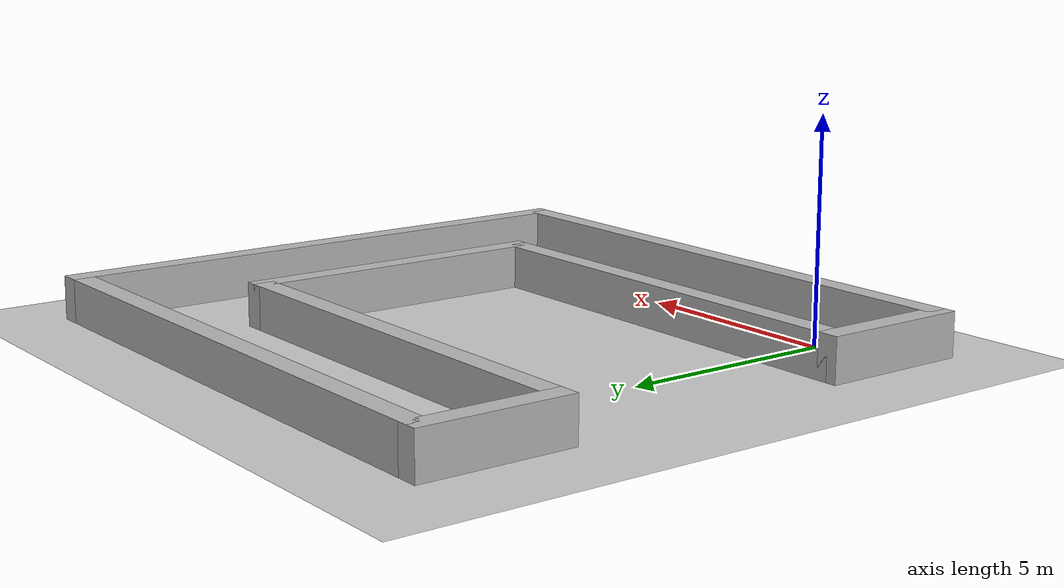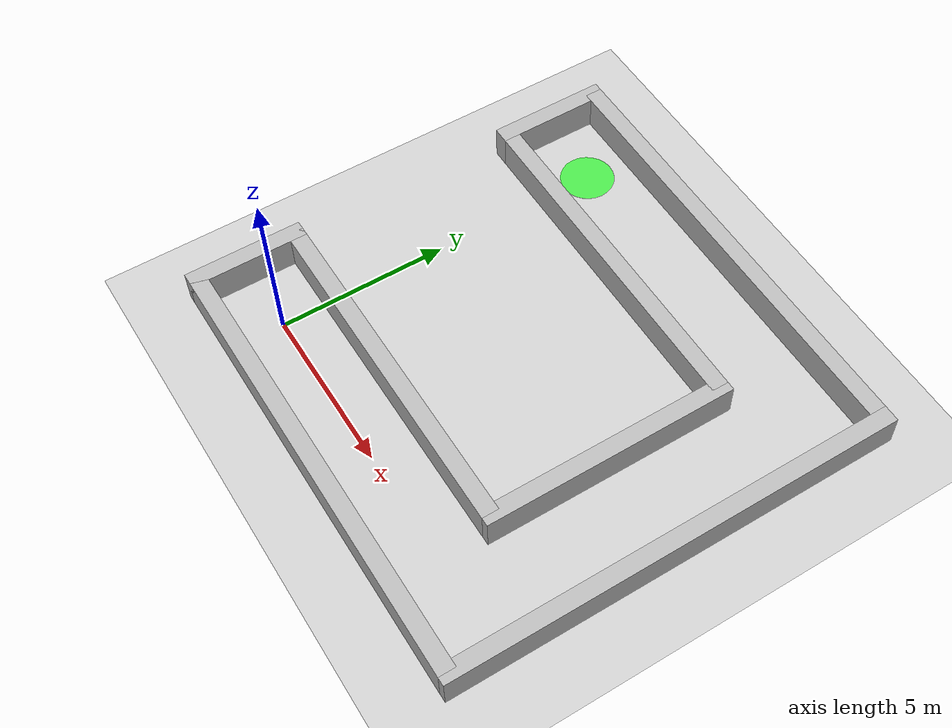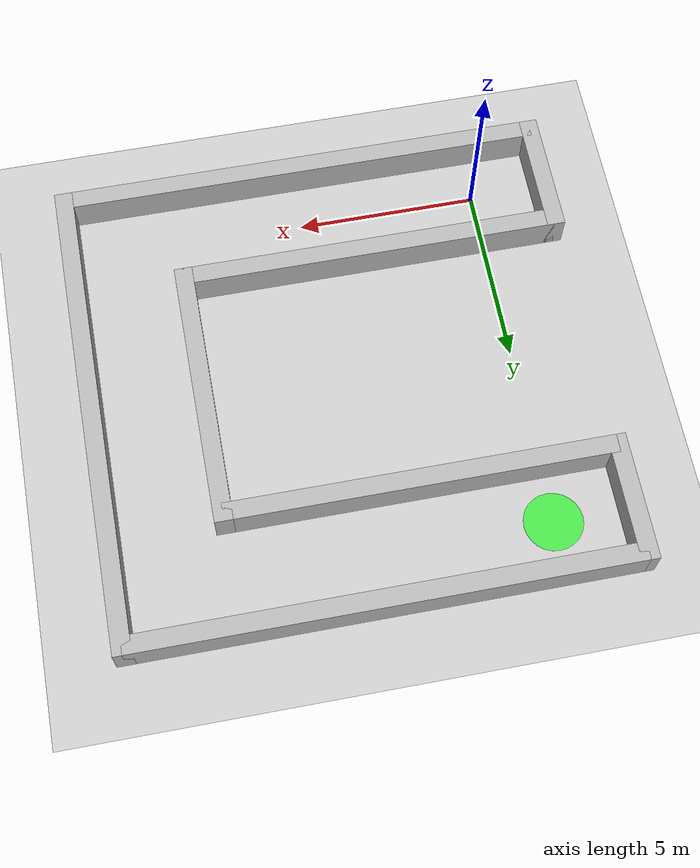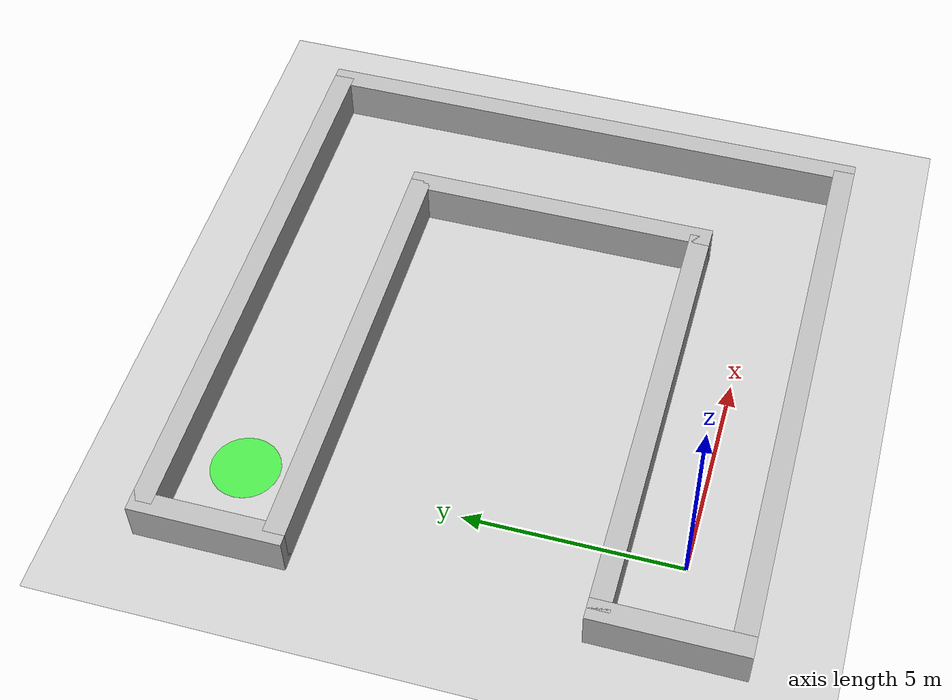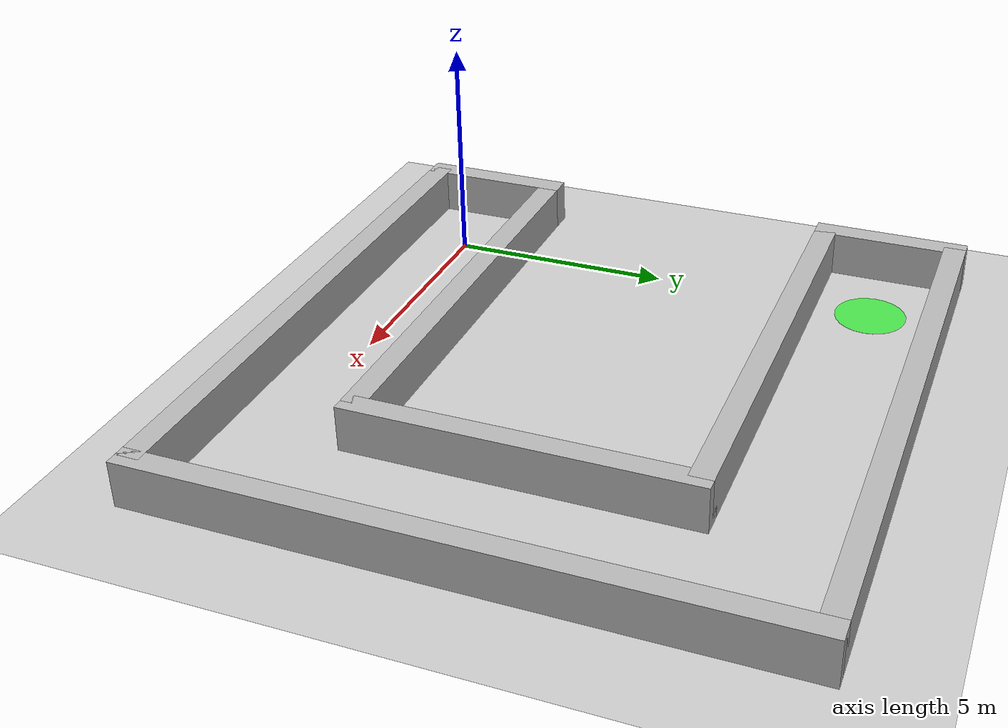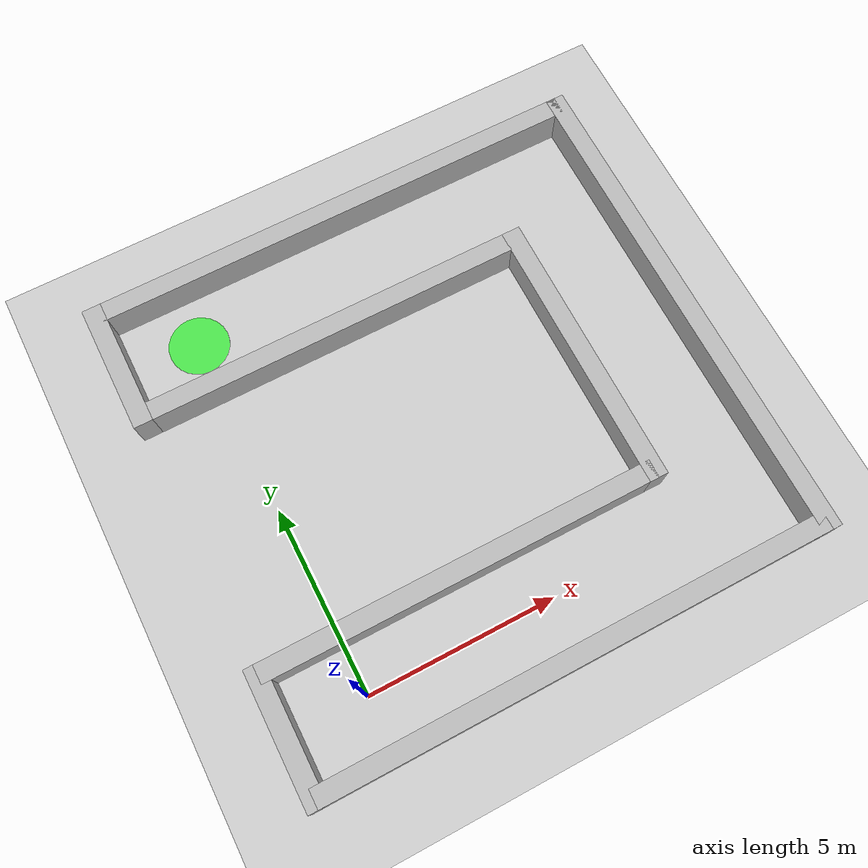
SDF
<?xml version="1.0" ?>
<sdf version="1.6">
  <world name="default">
    <physics type="ode">
      <real_time_factor>3</real_time_factor>
      <real_time_update_rate>3000</real_time_update_rate>
      <max_step_size>0.001</max_step_size>
      <ode>
        <solver><type>quick</type><iters>50</iters></solver>
        <constraints><cfm>0.0</cfm><erp>0.2</erp><contact_max_correcting_vel>100</contact_max_correcting_vel></constraints>
      </ode>
    </physics>
    <include><uri>model://sun</uri></include>
    <include><uri>model://ground_plane</uri></include>

    <model name="wall_bottom_outer"><static>true</static><pose>4.75 -1.5 0.5 0 0 0</pose><link name="link"><collision name="collision"><geometry><box><size>13.5 0.5 1.0</size></box></geometry></collision><visual name="visual"><geometry><box><size>13.5 0.5 1.0</size></box></geometry><material><script><uri>file://media/materials/scripts/gazebo.material</uri><name>Gazebo/Brick</name></script></material></visual></link></model>

    <model name="wall_right_outer"><static>true</static><pose>11.5 5.0 0.5 0 0 0</pose><link name="link"><collision name="collision"><geometry><box><size>0.5 13.5 1.0</size></box></geometry></collision><visual name="visual"><geometry><box><size>0.5 13.5 1.0</size></box></geometry><material><script><uri>file://media/materials/scripts/gazebo.material</uri><name>Gazebo/Brick</name></script></material></visual></link></model>

    <model name="wall_top_outer"><static>true</static><pose>4.75 11.5 0.5 0 0 0</pose><link name="link"><collision name="collision"><geometry><box><size>13.5 0.5 1.0</size></box></geometry></collision><visual name="visual"><geometry><box><size>13.5 0.5 1.0</size></box></geometry><material><script><uri>file://media/materials/scripts/gazebo.material</uri><name>Gazebo/Brick</name></script></material></visual></link></model>

    <model name="wall_start_block"><static>true</static><pose>-2.0 0.0 0.5 0 0 0</pose><link name="link"><collision name="collision"><geometry><box><size>0.5 3.5 1.0</size></box></geometry></collision><visual name="visual"><geometry><box><size>0.5 3.5 1.0</size></box></geometry><material><script><uri>file://media/materials/scripts/gazebo.material</uri><name>Gazebo/Brick</name></script></material></visual></link></model>

    <model name="wall_end_block"><static>true</static><pose>-2.0 10.0 0.5 0 0 0</pose><link name="link"><collision name="collision"><geometry><box><size>0.5 3.5 1.0</size></box></geometry></collision><visual name="visual"><geometry><box><size>0.5 3.5 1.0</size></box></geometry><material><script><uri>file://media/materials/scripts/gazebo.material</uri><name>Gazebo/Brick</name></script></material></visual></link></model>

    <model name="wall_inner_bottom"><static>true</static><pose>3.25 1.5 0.5 0 0 0</pose><link name="link"><collision name="collision"><geometry><box><size>10.5 0.5 1.0</size></box></geometry></collision><visual name="visual"><geometry><box><size>10.5 0.5 1.0</size></box></geometry><material><script><uri>file://media/materials/scripts/gazebo.material</uri><name>Gazebo/Brick</name></script></material></visual></link></model>

    <model name="wall_inner_vertical"><static>true</static><pose>8.5 5.0 0.5 0 0 0</pose><link name="link"><collision name="collision"><geometry><box><size>0.5 7.5 1.0</size></box></geometry></collision><visual name="visual"><geometry><box><size>0.5 7.5 1.0</size></box></geometry><material><script><uri>file://media/materials/scripts/gazebo.material</uri><name>Gazebo/Brick</name></script></material></visual></link></model>

    <model name="wall_inner_top"><static>true</static><pose>3.25 8.5 0.5 0 0 0</pose><link name="link"><collision name="collision"><geometry><box><size>10.5 0.5 1.0</size></box></geometry></collision><visual name="visual"><geometry><box><size>10.5 0.5 1.0</size></box></geometry><material><script><uri>file://media/materials/scripts/gazebo.material</uri><name>Gazebo/Brick</name></script></material></visual></link></model>

    <model name="target_marker">
      <static>true</static><pose>0.0 10.0 0.005 0 0 0</pose>
      <link name="link">
        <visual name="visual"><geometry><cylinder><radius>0.8</radius><length>0.01</length></cylinder></geometry>
          <material><ambient>0.0 1.0 0.0 0.6</ambient><diffuse>0.0 1.0 0.0 0.6</diffuse><emissive>0.0 0.5 0.0 1.0</emissive></material>
        </visual>
      </link>
    </model>
  </world>
</sdf>
